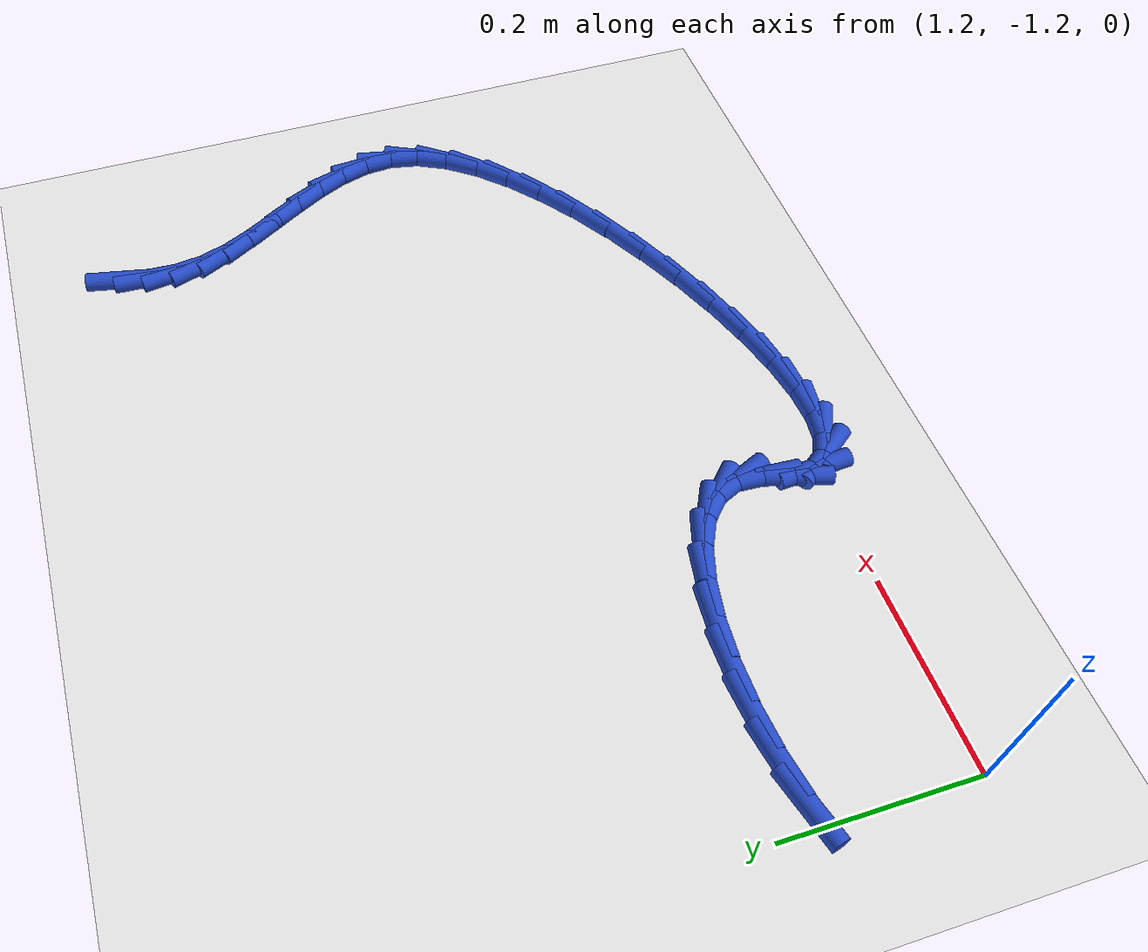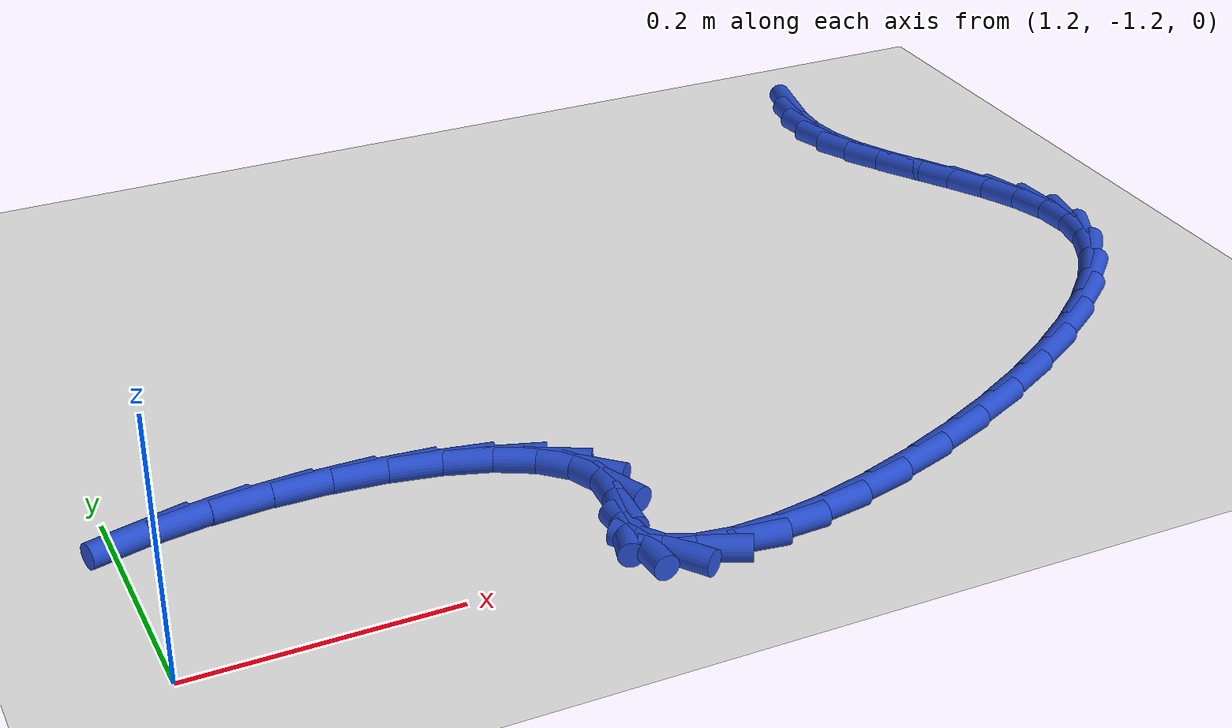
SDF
<sdf version="1.6">
 <world name="default">
  <model name="ground_plane">
   <static>1</static>
   <link name="link">
    <collision name="collision">
     <geometry><plane><normal>0 0 1</normal><size>100 100</size></plane></geometry>
     <surface><friction><ode><mu>100</mu><mu2>50</mu2></ode></friction></surface>
    </collision>
    <visual name="visual">
     <cast_shadows>0</cast_shadows>
     <geometry><plane><normal>0 0 1</normal><size>100 100</size></plane></geometry>
     <material>
      <script><uri>file://media/materials/scripts/gazebo.material</uri><name>Gazebo/WhiteGlow</name></script>
     </material>
    </visual>
   </link>
  </model>
  <model name="line">
   <link name="link_142">
    <pose>1.991348345896023 -0.5684985076568504 0.01 0 1.57 1.3689602346804803</pose>
    <collision name="collision">
     <geometry><cylinder><radius>0.01</radius><length>0.08</length></cylinder></geometry>
    </collision>
    <visual name="visual">
     <material>
      <script><name>Gazebo/Blue</name><uri>file://media/materials/scripts/gazebo.material</uri></script>
     </material>
     <geometry><cylinder><radius>0.01</radius><length>0.08</length></cylinder></geometry>
    </visual>
   </link>
   <link name="link_143">
    <pose>1.9852551290258227 -0.5982763822928393 0.01 0 1.57 1.5267960495371897</pose>
    <collision name="collision">
     <geometry><cylinder><radius>0.01</radius><length>0.08</length></cylinder></geometry>
    </collision>
    <visual name="visual">
     <material>
      <script><name>Gazebo/Blue</name><uri>file://media/materials/scripts/gazebo.material</uri></script>
     </material>
     <geometry><cylinder><radius>0.01</radius><length>0.08</length></cylinder></geometry>
    </visual>
   </link>
   <link name="link_144">
    <pose>1.983945366026366 -0.628024323159248 0.01 0 1.57 -1.4386278351357145</pose>
    <collision name="collision">
     <geometry><cylinder><radius>0.01</radius><length>0.08</length></cylinder></geometry>
    </collision>
    <visual name="visual">
     <material>
      <script><name>Gazebo/Blue</name><uri>file://media/materials/scripts/gazebo.material</uri></script>
     </material>
     <geometry><cylinder><radius>0.01</radius><length>0.08</length></cylinder></geometry>
    </visual>
   </link>
   <link name="link_145">
    <pose>1.9879059873614202 -0.6578160861745664 0.01 0 1.57 -1.2586566084100828</pose>
    <collision name="collision">
     <geometry><cylinder><radius>0.01</radius><length>0.08</length></cylinder></geometry>
    </collision>
    <visual name="visual">
     <material>
      <script><name>Gazebo/Blue</name><uri>file://media/materials/scripts/gazebo.material</uri></script>
     </material>
     <geometry><cylinder><radius>0.01</radius><length>0.08</length></cylinder></geometry>
    </visual>
   </link>
   <link name="link_146">
    <pose>1.99755713259108 -0.6877246456262535 0.01 0 1.57 -1.121404774724286</pose>
    <collision name="collision">
     <geometry><cylinder><radius>0.01</radius><length>0.08</length></cylinder></geometry>
    </collision>
    <visual name="visual">
     <material>
      <script><name>Gazebo/Blue</name><uri>file://media/materials/scripts/gazebo.material</uri></script>
     </material>
     <geometry><cylinder><radius>0.01</radius><length>0.08</length></cylinder></geometry>
    </visual>
   </link>
   <link name="link_147">
    <pose>2.0120666352318985 -0.7178083204938045 0.01 0 1.57 -1.048999533485611</pose>
    <collision name="collision">
     <geometry><cylinder><radius>0.01</radius><length>0.08</length></cylinder></geometry>
    </collision>
    <visual name="visual">
     <material>
      <script><name>Gazebo/Blue</name><uri>file://media/materials/scripts/gazebo.material</uri></script>
     </material>
     <geometry><cylinder><radius>0.01</radius><length>0.08</length></cylinder></geometry>
    </visual>
   </link>
   <link name="link_148">
    <pose>2.029489976458235 -0.748112412278895 0.01 0 1.57 -1.030079350697898</pose>
    <collision name="collision">
     <geometry><cylinder><radius>0.01</radius><length>0.08</length></cylinder></geometry>
    </collision>
    <visual name="visual">
     <material>
      <script><name>Gazebo/Blue</name><uri>file://media/materials/scripts/gazebo.material</uri></script>
     </material>
     <geometry><cylinder><radius>0.01</radius><length>0.08</length></cylinder></geometry>
    </visual>
   </link>
   <link name="link_149">
    <pose>2.0478439605727545 -0.7786817698610441 0.01 0 1.57 -1.0600879600128819</pose>
    <collision name="collision">
     <geometry><cylinder><radius>0.01</radius><length>0.08</length></cylinder></geometry>
    </collision>
    <visual name="visual">
     <material>
      <script><name>Gazebo/Blue</name><uri>file://media/materials/scripts/gazebo.material</uri></script>
     </material>
     <geometry><cylinder><radius>0.01</radius><length>0.08</length></cylinder></geometry>
    </visual>
   </link>
   <link name="link_150">
    <pose>2.065145391878124 -0.8095612421197697 0.01 0 1.57 -1.1423604030568286</pose>
    <collision name="collision">
     <geometry><cylinder><radius>0.01</radius><length>0.08</length></cylinder></geometry>
    </collision>
    <visual name="visual">
     <material>
      <script><name>Gazebo/Blue</name><uri>file://media/materials/scripts/gazebo.material</uri></script>
     </material>
     <geometry><cylinder><radius>0.01</radius><length>0.08</length></cylinder></geometry>
    </visual>
   </link>
   <link name="link_151">
    <pose>2.07941107467701 -0.8407956779345902 0.01 0 1.57 -1.2864172440036652</pose>
    <collision name="collision">
     <geometry><cylinder><radius>0.01</radius><length>0.08</length></cylinder></geometry>
    </collision>
    <visual name="visual">
     <material>
      <script><name>Gazebo/Blue</name><uri>file://media/materials/scripts/gazebo.material</uri></script>
     </material>
     <geometry><cylinder><radius>0.01</radius><length>0.08</length></cylinder></geometry>
    </visual>
   </link>
   <link name="link_152">
    <pose>2.0886578132720786 -0.8724299261850235 0.01 0 1.57 -1.5009390190046512</pose>
    <collision name="collision">
     <geometry><cylinder><radius>0.01</radius><length>0.08</length></cylinder></geometry>
    </collision>
    <visual name="visual">
     <material>
      <script><name>Gazebo/Blue</name><uri>file://media/materials/scripts/gazebo.material</uri></script>
     </material>
     <geometry><cylinder><radius>0.01</radius><length>0.08</length></cylinder></geometry>
    </visual>
   </link>
   <link name="link_153">
    <pose>2.0909024119659967 -0.9045088357505875 0.01 0 1.57 1.3689950916484677</pose>
    <collision name="collision">
     <geometry><cylinder><radius>0.01</radius><length>0.08</length></cylinder></geometry>
    </collision>
    <visual name="visual">
     <material>
      <script><name>Gazebo/Blue</name><uri>file://media/materials/scripts/gazebo.material</uri></script>
     </material>
     <geometry><cylinder><radius>0.01</radius><length>0.08</length></cylinder></geometry>
    </visual>
   </link>
   <link name="link_154">
    <pose>2.084241889298722 -0.9370649419917905 0.01 0 1.57 1.1201574394186398</pose>
    <collision name="collision">
     <geometry><cylinder><radius>0.01</radius><length>0.08</length></cylinder></geometry>
    </collision>
    <visual name="visual">
     <material>
      <script><name>Gazebo/Blue</name><uri>file://media/materials/scripts/gazebo.material</uri></script>
     </material>
     <geometry><cylinder><radius>0.01</radius><length>0.08</length></cylinder></geometry>
    </visual>
   </link>
   <link name="link_155">
    <pose>2.0683611436012703 -0.9698870281790657 0.01 0 1.57 0.9377803839570998</pose>
    <collision name="collision">
     <geometry><cylinder><radius>0.01</radius><length>0.08</length></cylinder></geometry>
    </collision>
    <visual name="visual">
     <material>
      <script><name>Gazebo/Blue</name><uri>file://media/materials/scripts/gazebo.material</uri></script>
     </material>
     <geometry><cylinder><radius>0.01</radius><length>0.08</length></cylinder></geometry>
    </visual>
   </link>
   <link name="link_156">
    <pose>2.0444020550610884 -1.0025402193596562 0.01 0 1.57 0.8044719750321477</pose>
    <collision name="collision">
     <geometry><cylinder><radius>0.01</radius><length>0.08</length></cylinder></geometry>
    </collision>
    <visual name="visual">
     <material>
      <script><name>Gazebo/Blue</name><uri>file://media/materials/scripts/gazebo.material</uri></script>
     </material>
     <geometry><cylinder><radius>0.01</radius><length>0.08</length></cylinder></geometry>
    </visual>
   </link>
   <link name="link_157">
    <pose>2.01356047775765 -1.034581355162058 0.01 0 1.57 0.7034909803734796</pose>
    <collision name="collision">
     <geometry><cylinder><radius>0.01</radius><length>0.08</length></cylinder></geometry>
    </collision>
    <visual name="visual">
     <material>
      <script><name>Gazebo/Blue</name><uri>file://media/materials/scripts/gazebo.material</uri></script>
     </material>
     <geometry><cylinder><radius>0.01</radius><length>0.08</length></cylinder></geometry>
    </visual>
   </link>
   <link name="link_158">
    <pose>1.9770322657704311 -1.0655672752147674 0.01 0 1.57 0.6232819974266935</pose>
    <collision name="collision">
     <geometry><cylinder><radius>0.01</radius><length>0.08</length></cylinder></geometry>
    </collision>
    <visual name="visual">
     <material>
      <script><name>Gazebo/Blue</name><uri>file://media/materials/scripts/gazebo.material</uri></script>
     </material>
     <geometry><cylinder><radius>0.01</radius><length>0.08</length></cylinder></geometry>
    </visual>
   </link>
   <link name="link_159">
    <pose>1.9360132731789061 -1.0950548191462794 0.01 0 1.57 0.556158371308651</pose>
    <collision name="collision">
     <geometry><cylinder><radius>0.01</radius><length>0.08</length></cylinder></geometry>
    </collision>
    <visual name="visual">
     <material>
      <script><name>Gazebo/Blue</name><uri>file://media/materials/scripts/gazebo.material</uri></script>
     </material>
     <geometry><cylinder><radius>0.01</radius><length>0.08</length></cylinder></geometry>
    </visual>
   </link>
   <link name="link_160">
    <pose>1.89169935406255 -1.12260082658509 0.01 0 1.57 0.4967715114802554</pose>
    <collision name="collision">
     <geometry><cylinder><radius>0.01</radius><length>0.08</length></cylinder></geometry>
    </collision>
    <visual name="visual">
     <material>
      <script><name>Gazebo/Blue</name><uri>file://media/materials/scripts/gazebo.material</uri></script>
     </material>
     <geometry><cylinder><radius>0.01</radius><length>0.08</length></cylinder></geometry>
    </visual>
   </link>
   <link name="link_161">
    <pose>1.8452863625008387 -1.147762137159694 0.01 0 1.57 0.4410012570591264</pose>
    <collision name="collision">
     <geometry><cylinder><radius>0.01</radius><length>0.08</length></cylinder></geometry>
    </collision>
    <visual name="visual">
     <material>
      <script><name>Gazebo/Blue</name><uri>file://media/materials/scripts/gazebo.material</uri></script>
     </material>
     <geometry><cylinder><radius>0.01</radius><length>0.08</length></cylinder></geometry>
    </visual>
   </link>
   <link name="link_162">
    <pose>1.7979701525732457 -1.1700955904985888 0.01 0 1.57 0.38513603783287476</pose>
    <collision name="collision">
     <geometry><cylinder><radius>0.01</radius><length>0.08</length></cylinder></geometry>
    </collision>
    <visual name="visual">
     <material>
      <script><name>Gazebo/Blue</name><uri>file://media/materials/scripts/gazebo.material</uri></script>
     </material>
     <geometry><cylinder><radius>0.01</radius><length>0.08</length></cylinder></geometry>
    </visual>
   </link>
   <link name="link_163">
    <pose>1.7509465783592486 -1.189158026230268 0.01 0 1.57 0.3251047837465692</pose>
    <collision name="collision">
     <geometry><cylinder><radius>0.01</radius><length>0.08</length></cylinder></geometry>
    </collision>
    <visual name="visual">
     <material>
      <script><name>Gazebo/Blue</name><uri>file://media/materials/scripts/gazebo.material</uri></script>
     </material>
     <geometry><cylinder><radius>0.01</radius><length>0.08</length></cylinder></geometry>
    </visual>
   </link>
   <link name="link_164">
    <pose>1.7054114939383218 -1.204506283983228 0.01 0 1.57 0.25545473748874076</pose>
    <collision name="collision">
     <geometry><cylinder><radius>0.01</radius><length>0.08</length></cylinder></geometry>
    </collision>
    <visual name="visual">
     <material>
      <script><name>Gazebo/Blue</name><uri>file://media/materials/scripts/gazebo.material</uri></script>
     </material>
     <geometry><cylinder><radius>0.01</radius><length>0.08</length></cylinder></geometry>
    </visual>
   </link>
   <link name="link_165">
    <pose>1.6625607533899396 -1.215697203385964 0.01 0 1.57 0.1675278282989614</pose>
    <collision name="collision">
     <geometry><cylinder><radius>0.01</radius><length>0.08</length></cylinder></geometry>
    </collision>
    <visual name="visual">
     <material>
      <script><name>Gazebo/Blue</name><uri>file://media/materials/scripts/gazebo.material</uri></script>
     </material>
     <geometry><cylinder><radius>0.01</radius><length>0.08</length></cylinder></geometry>
    </visual>
   </link>
   <link name="link_166">
    <pose>1.6235902107935776 -1.222287624066972 0.01 0 1.57 0.04560296327210169</pose>
    <collision name="collision">
     <geometry><cylinder><radius>0.01</radius><length>0.08</length></cylinder></geometry>
    </collision>
    <visual name="visual">
     <material>
      <script><name>Gazebo/Blue</name><uri>file://media/materials/scripts/gazebo.material</uri></script>
     </material>
     <geometry><cylinder><radius>0.01</radius><length>0.08</length></cylinder></geometry>
    </visual>
   </link>
   <link name="link_167">
    <pose>1.5896957202287112 -1.2238343856547478 0.01 0 1.57 -0.14168326996033215</pose>
    <collision name="collision">
     <geometry><cylinder><radius>0.01</radius><length>0.08</length></cylinder></geometry>
    </collision>
    <visual name="visual">
     <material>
      <script><name>Gazebo/Blue</name><uri>file://media/materials/scripts/gazebo.material</uri></script>
     </material>
     <geometry><cylinder><radius>0.01</radius><length>0.08</length></cylinder></geometry>
    </visual>
   </link>
   <link name="link_168">
    <pose>1.5620731357748154 -1.2198943277777865 0.01 0 1.57 -0.4553825235843616</pose>
    <collision name="collision">
     <geometry><cylinder><radius>0.01</radius><length>0.08</length></cylinder></geometry>
    </collision>
    <visual name="visual">
     <material>
      <script><name>Gazebo/Blue</name><uri>file://media/materials/scripts/gazebo.material</uri></script>
     </material>
     <geometry><cylinder><radius>0.01</radius><length>0.08</length></cylinder></geometry>
    </visual>
   </link>
   <link name="link_169">
    <pose>1.541918311511365 -1.210024290064584 0.01 0 1.57 -0.9550889186702833</pose>
    <collision name="collision">
     <geometry><cylinder><radius>0.01</radius><length>0.08</length></cylinder></geometry>
    </collision>
    <visual name="visual">
     <material>
      <script><name>Gazebo/Blue</name><uri>file://media/materials/scripts/gazebo.material</uri></script>
     </material>
     <geometry><cylinder><radius>0.01</radius><length>0.08</length></cylinder></geometry>
    </visual>
   </link>
   <link name="link_170">
    <pose>1.530427101517835 -1.1937811121436348 0.01 0 1.57 -1.5001517865827871</pose>
    <collision name="collision">
     <geometry><cylinder><radius>0.01</radius><length>0.08</length></cylinder></geometry>
    </collision>
    <visual name="visual">
     <material>
      <script><name>Gazebo/Blue</name><uri>file://media/materials/scripts/gazebo.material</uri></script>
     </material>
     <geometry><cylinder><radius>0.01</radius><length>0.08</length></cylinder></geometry>
    </visual>
   </link>
   <link name="link_171">
    <pose>1.528795359873702 -1.1707216336434363 0.01 0 1.57 1.2976382713482266</pose>
    <collision name="collision">
     <geometry><cylinder><radius>0.01</radius><length>0.08</length></cylinder></geometry>
    </collision>
    <visual name="visual">
     <material>
      <script><name>Gazebo/Blue</name><uri>file://media/materials/scripts/gazebo.material</uri></script>
     </material>
     <geometry><cylinder><radius>0.01</radius><length>0.08</length></cylinder></geometry>
    </visual>
   </link>
   <link name="link_172">
    <pose>1.5371513938306516 -1.1408958123506991 0.01 0 1.57 1.5139293173131871</pose>
    <collision name="collision">
     <geometry><cylinder><radius>0.01</radius><length>0.08</length></cylinder></geometry>
    </collision>
    <visual name="visual">
     <material>
      <script><name>Gazebo/Blue</name><uri>file://media/materials/scripts/gazebo.material</uri></script>
     </material>
     <geometry><cylinder><radius>0.01</radius><length>0.08</length></cylinder></geometry>
    </visual>
   </link>
   <link name="link_173">
    <pose>1.538780521057295 -1.11227868017887 0.01 0 1.57 -1.1695083026771942</pose>
    <collision name="collision">
     <geometry><cylinder><radius>0.01</radius><length>0.08</length></cylinder></geometry>
    </collision>
    <visual name="visual">
     <material>
      <script><name>Gazebo/Blue</name><uri>file://media/materials/scripts/gazebo.material</uri></script>
     </material>
     <geometry><cylinder><radius>0.01</radius><length>0.08</length></cylinder></geometry>
    </visual>
   </link>
   <link name="link_174">
    <pose>1.5284512965736463 -1.0879352326121294 0.01 0 1.57 -0.7742788693261812</pose>
    <collision name="collision">
     <geometry><cylinder><radius>0.01</radius><length>0.08</length></cylinder></geometry>
    </collision>
    <visual name="visual">
     <material>
      <script><name>Gazebo/Blue</name><uri>file://media/materials/scripts/gazebo.material</uri></script>
     </material>
     <geometry><cylinder><radius>0.01</radius><length>0.08</length></cylinder></geometry>
    </visual>
   </link>
   <link name="link_175">
    <pose>1.5078589919651846 -1.0677958542313994 0.01 0 1.57 -0.5019703145623533</pose>
    <collision name="collision">
     <geometry><cylinder><radius>0.01</radius><length>0.08</length></cylinder></geometry>
    </collision>
    <visual name="visual">
     <material>
      <script><name>Gazebo/Blue</name><uri>file://media/materials/scripts/gazebo.material</uri></script>
     </material>
     <geometry><cylinder><radius>0.01</radius><length>0.08</length></cylinder></geometry>
    </visual>
   </link>
   <link name="link_176">
    <pose>1.4786988788173865 -1.0517909296176005 0.01 0 1.57 -0.31998118954991667</pose>
    <collision name="collision">
     <geometry><cylinder><radius>0.01</radius><length>0.08</length></cylinder></geometry>
    </collision>
    <visual name="visual">
     <material>
      <script><name>Gazebo/Blue</name><uri>file://media/materials/scripts/gazebo.material</uri></script>
     </material>
     <geometry><cylinder><radius>0.01</radius><length>0.08</length></cylinder></geometry>
    </visual>
   </link>
   <link name="link_177">
    <pose>1.4426662287157281 -1.0398508433516542 0.01 0 1.57 -0.19045344063329767</pose>
    <collision name="collision">
     <geometry><cylinder><radius>0.01</radius><length>0.08</length></cylinder></geometry>
    </collision>
    <visual name="visual">
     <material>
      <script><name>Gazebo/Blue</name><uri>file://media/materials/scripts/gazebo.material</uri></script>
     </material>
     <geometry><cylinder><radius>0.01</radius><length>0.08</length></cylinder></geometry>
    </visual>
   </link>
   <link name="link_178">
    <pose>1.4014563132456894 -1.031905980014482 0.01 0 1.57 -0.0896912316492175</pose>
    <collision name="collision">
     <geometry><cylinder><radius>0.01</radius><length>0.08</length></cylinder></geometry>
    </collision>
    <visual name="visual">
     <material>
      <script><name>Gazebo/Blue</name><uri>file://media/materials/scripts/gazebo.material</uri></script>
     </material>
     <geometry><cylinder><radius>0.01</radius><length>0.08</length></cylinder></geometry>
    </visual>
   </link>
   <link name="link_179">
    <pose>1.3567644039927471 -1.027886724187005 0.01 0 1.57 -0.0035126478615688144</pose>
    <collision name="collision">
     <geometry><cylinder><radius>0.01</radius><length>0.08</length></cylinder></geometry>
    </collision>
    <visual name="visual">
     <material>
      <script><name>Gazebo/Blue</name><uri>file://media/materials/scripts/gazebo.material</uri></script>
     </material>
     <geometry><cylinder><radius>0.01</radius><length>0.08</length></cylinder></geometry>
    </visual>
   </link>
   <link name="link_180">
    <pose>1.3102857725423784 -1.0277234604501446 0.01 0 1.57 0.07764275529029054</pose>
    <collision name="collision">
     <geometry><cylinder><radius>0.01</radius><length>0.08</length></cylinder></geometry>
    </collision>
    <visual name="visual">
     <material>
      <script><name>Gazebo/Blue</name><uri>file://media/materials/scripts/gazebo.material</uri></script>
     </material>
     <geometry><cylinder><radius>0.01</radius><length>0.08</length></cylinder></geometry>
    </visual>
   </link>
   <link name="link_181">
    <pose>1.2637156904800606 -1.0313465733848217 0.01 0 1.57 0.16180372154657008</pose>
    <collision name="collision">
     <geometry><cylinder><radius>0.01</radius><length>0.08</length></cylinder></geometry>
    </collision>
    <visual name="visual">
     <material>
      <script><name>Gazebo/Blue</name><uri>file://media/materials/scripts/gazebo.material</uri></script>
     </material>
     <geometry><cylinder><radius>0.01</radius><length>0.08</length></cylinder></geometry>
    </visual>
   </link>
   <link name="link_182">
    <pose>1.2187494293912722 -1.0386864475719575 0.01 0 1.57 0.25778395206308763</pose>
    <collision name="collision">
     <geometry><cylinder><radius>0.01</radius><length>0.08</length></cylinder></geometry>
    </collision>
    <visual name="visual">
     <material>
      <script><name>Gazebo/Blue</name><uri>file://media/materials/scripts/gazebo.material</uri></script>
     </material>
     <geometry><cylinder><radius>0.01</radius><length>0.08</length></cylinder></geometry>
    </visual>
   </link>
  </model>
 </world>
</sdf>
